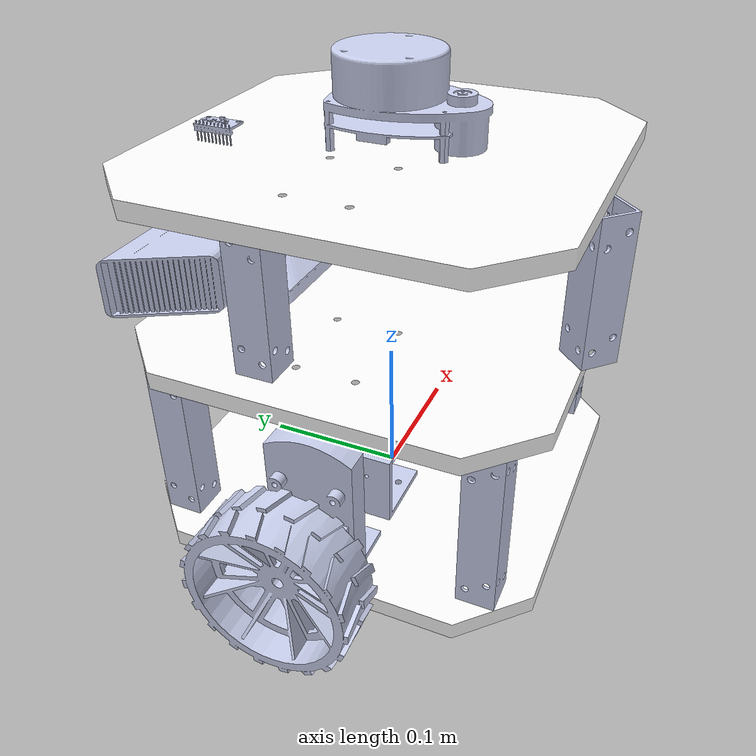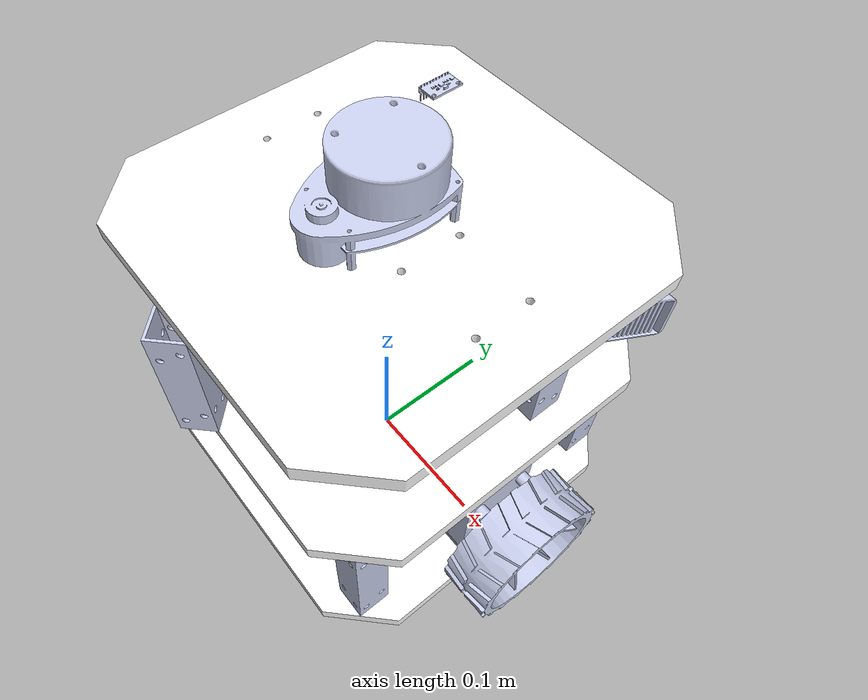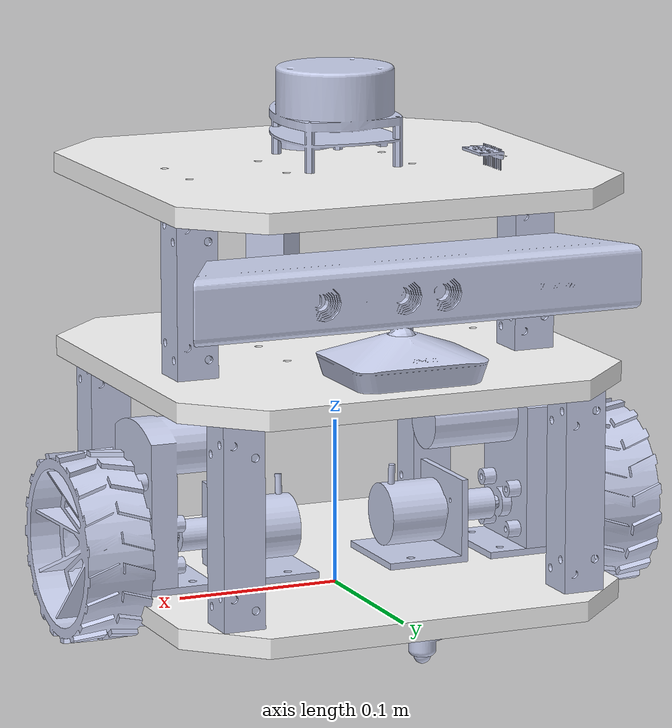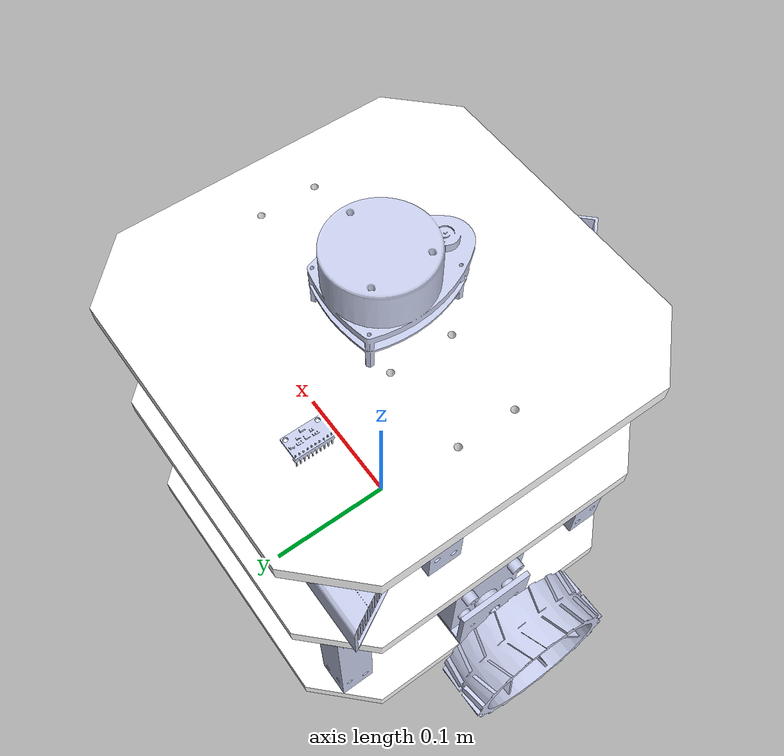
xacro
<?xml version="1.0" encoding="utf-8"?>

<robot name="turtlebot3_pro_max123"  xmlns:xacro="http://www.ros.org/wiki/xacro">

  <xacro:property name="Kinect_Camera" value="0.05" /> <!-- Size of square 'camera' box -->
  <xacro:property name="RP_LiDAR_A1" value="0.05" /> <!-- Size of square 'LiDAR' box -->

  <xacro:property name="M_PI" value="3.14159265359" />
  <xacro:property name="M_PI2" value="1.57079632679" />

  <xacro:property name="_friction" value="0.1" />
  <xacro:property name="_damping" value="0.001" />
  <xacro:property name="_velocity" value="0.5" />
  <xacro:property name="_effort" value="1000.0" />
  <xacro:property name="_lower_limit" value="-6.0" />
  <xacro:property name="_higher_limit" value="6.0" />

  <xacro:include filename="$(find turtlebot3_pro_max123)/urdf/turtlebot3_pro_max123.gazebo" />
  <xacro:include filename="$(find turtlebot3_pro_max123)/urdf/materials.xacro" />
  <xacro:include filename="$(find turtlebot3_pro_max123)/urdf/macros.xacro" />

  <link
    name="Ground Floor">
    <inertial>
      <origin
        xyz="4.70304717569314E-19 -1.51383696413054E-18 0.006"
        rpy="0 0 0" />
      <mass
        value="0.306175115098668" />
      <inertia
        ixx="0.00188258342887214"
        ixy="-1.06344407501349E-19"
        ixz="-9.60175745415004E-23"
        iyy="0.0018791495675708"
        iyz="1.14475544064493E-19"
        izz="0.00375438479368057" />
    </inertial>
    <visual>
      <origin
        xyz="0 0 0"
        rpy="0 0 0" />
      <geometry>
        <mesh
          filename="package://turtlebot3_pro_max123/meshes/Ground Floor.STL" />
      </geometry>
      <material
        name="">
        <color
          rgba="1 1 1 1" />
      </material>
    </visual>
    <collision>
      <origin
        xyz="0 0 0"
        rpy="0 0 0" />
      <geometry>
        <mesh
          filename="package://turtlebot3_pro_max123/meshes/Ground Floor_collision.STL" />
      </geometry>
    </collision>
  </link>
  <link
    name="Ground_Floor_Vertical_Links">
    <inertial>
      <origin
        xyz="-0.1073 -8.32667268468867E-17 -0.1073"
        rpy="0 0 0" />
      <mass
        value="0.0873427258771282" />
      <inertia
        ixx="0.000110813104969509"
        ixy="1.68389366232844E-08"
        ixz="1.07557713438902E-21"
        iyy="1.60586974010864E-05"
        iyz="-1.68389366232222E-08"
        izz="0.000110813104969509" />
    </inertial>
    <visual>
      <origin
        xyz="0 0 0"
        rpy="0 0 0" />
      <geometry>
        <mesh
          filename="package://turtlebot3_pro_max123/meshes/Ground_Floor_Vertical_Links.STL" />
      </geometry>
      <material
        name="">
        <color
          rgba="0.792156862745098 0.819607843137255 0.933333333333333 1" />
      </material>
    </visual>
    <collision>
      <origin
        xyz="0 0 0"
        rpy="0 0 0" />
      <geometry>
        <mesh
          filename="package://turtlebot3_pro_max123/meshes/Ground_Floor_Vertical_Links_collision.STL" />
      </geometry>
    </collision>
  </link>
  <joint
    name="Ground_Floor_Vertical_Links_Joint"
    type="fixed">
    <origin
      xyz="0.1073 0.1073 0.0720000000000001"
      rpy="1.5707963267949 0 1.5707963267949" />
    <parent
      link="Ground Floor" />
    <child
      link="Ground_Floor_Vertical_Links" />
    <axis
      xyz="0 0 0" />
  </joint>
  <link
    name="First_Floor">
    <inertial>
      <origin
        xyz="-7.86566268856647E-18 0.00600000000000023 3.94665955637125E-17"
        rpy="0 0 0" />
      <mass
        value="0.306175115098668" />
      <inertia
        ixx="0.00188258342887214"
        ixy="5.77401645268386E-24"
        ixz="-9.25547897022068E-20"
        iyy="0.00375438479368056"
        iyz="7.06684763120197E-19"
        izz="0.0018791495675708" />
    </inertial>
    <visual>
      <origin
        xyz="0 0 0"
        rpy="0 0 0" />
      <geometry>
        <mesh
          filename="package://turtlebot3_pro_max123/meshes/First_Floor.STL" />
      </geometry>
      <material
        name="">
        <color
          rgba="1 1 1 1" />
      </material>
    </visual>
    <collision>
      <origin
        xyz="0 0 0"
        rpy="0 0 0" />
      <geometry>
        <mesh
          filename="package://turtlebot3_pro_max123/meshes/First_Floor_collision.STL" />
      </geometry>
    </collision>
  </link>
  <joint
    name="First_Floor_Joint"
    type="fixed">
    <origin
      xyz="-0.1073 0.06 -0.1073"
      rpy="0 -1.5708 0" />
    <parent
      link="Ground_Floor_Vertical_Links" />
    <child
      link="First_Floor" />
    <axis
      xyz="0 0 0" />
  </joint>
  <link
    name="First_Floor_Vertical_Links">
    <inertial>
      <origin
        xyz="0.0974764231260202 -3.60822483003176E-16 0.0974766645992801"
        rpy="0 0 0" />
      <mass
        value="0.054275044407846" />
      <inertia
        ixx="4.94997932361172E-05"
        ixy="8.41946831165636E-09"
        ixz="0"
        iyy="9.9789824108148E-06"
        iyz="8.41946831165525E-09"
        izz="4.94997932361172E-05" />
    </inertial>
    <visual>
      <origin
        xyz="0 0 0"
        rpy="0 0 0" />
      <geometry>
        <mesh
          filename="package://turtlebot3_pro_max123/meshes/First_Floor_Vertical_Links.STL" />
      </geometry>
      <material
        name="">
        <color
          rgba="0.792156862745098 0.819607843137255 0.933333333333333 1" />
      </material>
    </visual>
    <collision>
      <origin
        xyz="0 0 0"
        rpy="0 0 0" />
      <geometry>
        <mesh
          filename="package://turtlebot3_pro_max123/meshes/First_Floor_Vertical_Links_collision.STL" />
      </geometry>
    </collision>
  </link>
  <joint
    name="First_Floor_Vertical_Links_Joint"
    type="fixed">
    <origin
      xyz="0 0.0619999999999999 -0.122039487757862"
      rpy="0 -0.785398163397447 -3.14159265358979" />
    <parent
      link="First_Floor" />
    <child
      link="First_Floor_Vertical_Links" />
    <axis
      xyz="0 0 0" />
  </joint>
  <link
    name="Second_Floor">
    <inertial>
      <origin
        xyz="-4.59978908314626E-17 0.00600000000000059 2.12960309672514E-18"
        rpy="0 0 0" />
      <mass
        value="0.306175115098668" />
      <inertia
        ixx="0.00188258342887214"
        ixy="1.06184538248409E-18"
        ixz="-1.15660529150226E-20"
        iyy="0.00375438479368057"
        iyz="2.28899169636148E-19"
        izz="0.0018791495675708" />
    </inertial>
    <visual>
      <origin
        xyz="0 0 0"
        rpy="0 0 0" />
      <geometry>
        <mesh
          filename="package://turtlebot3_pro_max123/meshes/Second_Floor.STL" />
      </geometry>
      <material
        name="">
        <color
          rgba="1 1 1 1" />
      </material>
    </visual>
    <collision>
      <origin
        xyz="0 0 0"
        rpy="0 0 0" />
      <geometry>
        <mesh
          filename="package://turtlebot3_pro_max123/meshes/Second_Floor_collision.STL" />
      </geometry>
    </collision>
  </link>
  <joint
    name="Second_Floor_Joint"
    type="fixed">
    <origin
      xyz="0.0862949493661165 -0.05 0.0862949493661169"
      rpy="3.14159265358979 0.785398163397447 0" />
    <parent
      link="First_Floor_Vertical_Links" />
    <child
      link="Second_Floor" />
    <axis
      xyz="0 0 0" />
  </joint>
  <link
    name="MPU9250">
    <inertial>
      <origin
        xyz="-0.118217830949175 -0.00104259470994378 -0.162868160967249"
        rpy="0 0 0" />
      <mass
        value="0.000628851677164537" />
      <inertia
        ixx="2.84177895500367E-08"
        ixy="-3.75278292675917E-14"
        ixz="4.57750732123504E-14"
        iyy="3.75953504496454E-08"
        iyz="-4.2587819218147E-14"
        izz="1.06612939030681E-08" />
    </inertial>
    <visual>
      <origin
        xyz="0 0 0"
        rpy="0 0 0" />
      <geometry>
        <mesh
          filename="package://turtlebot3_pro_max123/meshes/MPU9250.STL" />
      </geometry>
      <material
        name="">
        <color
          rgba="0.792156862745098 0.819607843137255 0.933333333333333 1" />
      </material>
    </visual>
    <collision>
      <origin
        xyz="0 0 0"
        rpy="0 0 0" />
      <geometry>
        <mesh
          filename="package://turtlebot3_pro_max123/meshes/MPU9250_collision.STL" />
      </geometry>
    </collision>
  </link>
  <joint
    name="MPU9250_joint"
    type="fixed">
    <origin
      xyz="-0.0625950000000004 0.0295700000000001 -0.0751399999999997"
      rpy="3.14159265358979 0 3.14159265358979" />
    <parent
      link="Second_Floor" />
    <child
      link="MPU9250" />
    <axis
      xyz="0 0 0" />
  </joint>
  <link
    name="RP_LiDAR_A1">
    <inertial>
      <origin
        xyz="-0.0210078094365039 0.0106966269502565 -9.1634219840406E-05"
        rpy="0 0 0" />
      <mass
        value="1.3324811049663" />
      <inertia
        ixx="0.000615842284246016"
        ixy="-0.000158500451241491"
        ixz="7.98987037271028E-07"
        iyy="0.0010983934471466"
        iyz="-3.10024618929427E-06"
        izz="0.000961697044037426" />
    </inertial>
    <visual>
      <origin
        xyz="0 0 0"
        rpy="0 0 0" />
      <geometry>
        <mesh
          filename="package://turtlebot3_pro_max123/meshes/RP_LiDAR_A1.STL" />
      </geometry>
      <material
        name="">
        <color
          rgba="0.792156862745098 0.819607843137255 0.933333333333333 1" />
      </material>
    </visual>
    <collision>
      <origin
        xyz="0 0 0"
        rpy="0 0 0" />
      <geometry>
        <mesh
          filename="package://turtlebot3_pro_max123/meshes/RP_LiDAR_A1_collision.STL" />
      </geometry>
    </collision>
  </link>
  <joint
    name="RP_LiDAR_A1_Joint"
    type="fixed">
    <origin
      xyz="0 0.0366 0.0142499999999999"
      rpy="0 -1.5707963267949 0" />
    <parent
      link="Second_Floor" />
    <child
      link="RP_LiDAR_A1" />
    <axis
      xyz="0 0 0" />
  </joint>
  <link
    name="Kinect_Base">
    <inertial>
      <origin
        xyz="-0.00425918193058036 0.00943012756099207 -0.184943395044608"
        rpy="0 0 0" />
      <mass
        value="0.100919540065879" />
      <inertia
        ixx="3.77313887602913E-05"
        ixy="-6.5453153474285E-12"
        ixz="1.045286227031E-10"
        iyy="8.33159866791771E-05"
        iyz="-2.65982400359128E-10"
        izz="5.25438545962697E-05" />
    </inertial>
    <visual>
      <origin
        xyz="0 0 0"
        rpy="0 0 0" />
      <geometry>
        <mesh
          filename="package://turtlebot3_pro_max123/meshes/Kinect_Base.STL" />
      </geometry>
      <material
        name="">
        <color
          rgba="0.792156862745098 0.819607843137255 0.933333333333333 1" />
      </material>
    </visual>
    <collision>
      <origin
        xyz="0 0 0"
        rpy="0 0 0" />
      <geometry>
        <mesh
          filename="package://turtlebot3_pro_max123/meshes/Kinect_Base_collision.STL" />
      </geometry>
    </collision>
  </link>
  <joint
    name="Kinect_Base_Joint"
    type="fixed">
    <origin
      xyz="0.00212959588475317 0.0125 0.0924719063318718"
      rpy="0 0 0" />
    <parent
      link="First_Floor" />
    <child
      link="Kinect_Base" />
    <axis
      xyz="0 0 0" />
  </joint>
  <joint
    name="Kinect_Camera_Joint"
    type="fixed">
    <origin
      xyz="0.000138403787494056 0.034 -0.00247190633187176"
      rpy="0 1.57079632675 0" />
    <parent
      link="Kinect_Base" />
    <child
      link="Kinect_Camera" />
    <axis
      xyz="0 0 0" />
  </joint>
  <link
    name="Kinect_Camera">
    <inertial>
      <origin
        xyz="-0.00473113870691642 0.0188109981011434 -0.181056666701459"
        rpy="0 0 0" />
      <mass
        value="0.545535346057759" />
      <inertia
        ixx="0.000225893798697897"
        ixy="3.46017963839556E-08"
        ixz="-2.56609747502066E-06"
        iyy="0.0028794245905872"
        iyz="-1.47528550669068E-07"
        izz="0.00278997231042472" />
    </inertial>
    <visual>
      <origin
        xyz="0 0 0"
        rpy="0 -1.571 0" />
      <geometry>
        <mesh
          filename="package://turtlebot3_pro_max123/meshes/Kinect_Camera.STL" />
      </geometry>
      <material
        name="">
        <color
          rgba="0.792156862745098 0.819607843137255 0.933333333333333 1" />
      </material>
    </visual>
    <collision>
      <origin
        xyz="0 0 0"
        rpy="0 -1.571 0" />
      <geometry>
        <mesh
          filename="package://turtlebot3_pro_max123/meshes/Kinect_Camera_collision.STL" />
      </geometry>
    </collision>
  </link>

  <link
    name="Front_Castor_Wheel">
    <inertial>
      <origin
        xyz="-0.254 2.88450778881281E-17 0.00452901974820012"
        rpy="0 0 0" />
      <mass
        value="0.00176851508275407" />
      <inertia
        ixx="7.19459865531897E-08"
        ixy="1.04003421744339E-22"
        ixz="4.19880617968765E-23"
        iyy="7.1945986553189E-08"
        iyz="2.56102315964772E-22"
        izz="9.78322787119691E-08" />
    </inertial>
    <visual>
      <origin
        xyz="0 0 0"
        rpy="0 0 0" />
      <geometry>
        <mesh
          filename="package://turtlebot3_pro_max123/meshes/Front_Castor_Wheel.STL" />
      </geometry>
      <material
        name="">
        <color
          rgba="0.792156862745098 0.819607843137255 0.933333333333333 1" />
      </material>
    </visual>
    <collision>
      <origin
        xyz="0 0 0"
        rpy="0 0 0" />
      <geometry>
        <mesh
          filename="package://turtlebot3_pro_max123/meshes/Front_Castor_Wheel_collision.STL" />
      </geometry>
    </collision>
  </link>
  <joint
    name="Front_Castor_Wheel_Joint"
    type="fixed">
    <origin
      xyz="0 -0.127 0"
      rpy="3.14159265358979 0 -1.5707963267949" />
    <parent
      link="Ground Floor" />
    <child
      link="Front_Castor_Wheel" />
    <axis
      xyz="0 0 0" />
  </joint>
  <link
    name="Front_Castor_Ball">
    <inertial>
      <origin
        xyz="0.254 0 2.01637250299425E-10"
        rpy="0 0 0" />
      <mass
        value="0.000523598775598299" />
      <inertia
        ixx="5.23598775598299E-09"
        ixy="-3.25208566183215E-57"
        ixz="9.3549344069031E-52"
        iyy="5.23598775598299E-09"
        iyz="4.44108029208484E-35"
        izz="5.23598775598299E-09" />
    </inertial>
    <visual>
      <origin
        xyz="0 0 0"
        rpy="0 0 0" />
      <geometry>
        <mesh
          filename="package://turtlebot3_pro_max123/meshes/Front_Castor_Ball.STL" />
      </geometry>
      <material
        name="">
        <color
          rgba="0.792156862745098 0.819607843137255 0.933333333333333 1" />
      </material>
    </visual>
    <collision>
      <origin
        xyz="0 0 0"
        rpy="0 0 0" />
      <geometry>
        <mesh
          filename="package://turtlebot3_pro_max123/meshes/Front_Castor_Ball_collision.STL" />
      </geometry>
    </collision>
  </link>
  <joint
    name="Front_Castor_Ball_Joint"
    type="fixed">
    <origin
      xyz="0 0 0.0119999998991814"
      rpy="0 0 3.14159265358979" />
    <parent
      link="Front_Castor_Wheel" />
    <child
      link="Front_Castor_Ball" />
    <axis
      xyz="0 0 0" />
  </joint>
  <link
    name="Back_Castor_Wheel">
    <inertial>
      <origin
        xyz="-1.99732395248982E-17 0.254 0.00452901974820007"
        rpy="0 0 0" />
      <mass
        value="0.00176851508275407" />
      <inertia
        ixx="7.19459865531896E-08"
        ixy="1.02595151896986E-22"
        ixz="-2.99121332209767E-23"
        iyy="7.19459865531889E-08"
        iyz="2.61586404997334E-22"
        izz="9.78322787119691E-08" />
    </inertial>
    <visual>
      <origin
        xyz="0 0 0"
        rpy="0 0 0" />
      <geometry>
        <mesh
          filename="package://turtlebot3_pro_max123/meshes/Back_Castor_Wheel.STL" />
      </geometry>
      <material
        name="">
        <color
          rgba="0.792156862745098 0.819607843137255 0.933333333333333 1" />
      </material>
    </visual>
    <collision>
      <origin
        xyz="0 0 0"
        rpy="0 0 0" />
      <geometry>
        <mesh
          filename="package://turtlebot3_pro_max123/meshes/Back_Castor_Wheel_collision.STL" />
      </geometry>
    </collision>
  </link>
  <joint
    name="Back_Castor_Wheel_Joint"
    type="fixed">
    <origin
      xyz="0 0.127 0"
      rpy="-3.14159265358979 0 0" />
    <parent
      link="Ground Floor" />
    <child
      link="Back_Castor_Wheel" />
    <axis
      xyz="0 0 0" />
  </joint>
  <link
    name="Back_Castor_Ball">
    <inertial>
      <origin
        xyz="-3.5808674788745E-17 -0.253999999899181 4.0327718595079E-10"
        rpy="0 0 0" />
      <mass
        value="0.000523598775598299" />
      <inertia
        ixx="5.23598775598299E-09"
        ixy="-5.16987882845663E-26"
        ixz="-2.06795153138256E-25"
        iyy="5.23598775598299E-09"
        iyz="5.16987882845642E-26"
        izz="5.23598775598299E-09" />
    </inertial>
    <visual>
      <origin
        xyz="0 0 0"
        rpy="0 0 0" />
      <geometry>
        <mesh
          filename="package://turtlebot3_pro_max123/meshes/Back_Castor_Ball.STL" />
      </geometry>
      <material
        name="">
        <color
          rgba="0.792156862745098 0.819607843137255 0.933333333333333 1" />
      </material>
    </visual>
    <collision>
      <origin
        xyz="0 0 0"
        rpy="0 0 0" />
      <geometry>
        <mesh
          filename="package://turtlebot3_pro_max123/meshes/Back_Castor_Ball_collision.STL" />
      </geometry>
    </collision>
  </link>
  <joint
    name="Back_Castor_Ball_Joint"
    type="fixed">
    <origin
      xyz="0 0 0.0120000001008186"
      rpy="-3.14159265358978 0 0" />
    <parent
      link="Back_Castor_Wheel" />
    <child
      link="Back_Castor_Ball" />
    <axis
      xyz="0 0 0" />
  </joint>
  <link
    name="Left_Encoder_Angle_Plate">
    <inertial>
      <origin
        xyz="4.00204699044691E-16 0.0147826849637491 -0.0134823723164557"
        rpy="0 0 0" />
      <mass
        value="0.0219254603042376" />
      <inertia
        ixx="1.11096889660457E-05"
        ixy="-3.62497572674904E-21"
        ixz="1.9290648439196E-20"
        iyy="1.2452291796096E-05"
        iyz="-3.21812145037989E-06"
        izz="1.24772407573447E-05" />
    </inertial>
    <visual>
      <origin
        xyz="0 0 0"
        rpy="0 0 0" />
      <geometry>
        <mesh
          filename="package://turtlebot3_pro_max123/meshes/Left_Encoder_Angle_Plate.STL" />
      </geometry>
      <material
        name="">
        <color
          rgba="0.792156862745098 0.819607843137255 0.933333333333333 1" />
      </material>
    </visual>
    <collision>
      <origin
        xyz="0 0 0"
        rpy="0 0 0" />
      <geometry>
        <mesh
          filename="package://turtlebot3_pro_max123/meshes/Left_Encoder_Angle_Plate.STL" />
      </geometry>
    </collision>
  </link>
  <joint
    name="Left_Encoder_Angle_Plate_Joint"
    type="fixed">
    <origin
      xyz="0.0739999999999819 0 0.012"
      rpy="-3.14159265358979 0 -1.5707963267949" />
    <parent
      link="Ground Floor" />
    <child
      link="Left_Encoder_Angle_Plate" />
    <axis
      xyz="0 0 0" />
  </joint>
  <link
    name="Left_Encoder">
    <inertial>
      <origin
        xyz="-2.07796140537508E-10 -9.19971150234455E-05 0.0180755929019836"
        rpy="0 0 0" />
      <mass
        value="0.0410483914806997" />
      <inertia
        ixx="8.2840083563058E-06"
        ixy="-1.57526967029876E-13"
        ixz="-3.75754148520815E-14"
        iyy="8.18832869190217E-06"
        iyz="-4.56008928061674E-08"
        izz="7.30004066465015E-06" />
    </inertial>
    <visual>
      <origin
        xyz="0 0 0"
        rpy="0 0 0" />
      <geometry>
        <mesh
          filename="package://turtlebot3_pro_max123/meshes/Left_Encoder.STL" />
      </geometry>
      <material
        name="">
        <color
          rgba="0.792156862745098 0.819607843137255 0.933333333333333 1" />
      </material>
    </visual>
    <collision>
      <origin
        xyz="0 0 0"
        rpy="0 0 0" />
      <geometry>
        <mesh
          filename="package://turtlebot3_pro_max123/meshes/Left_Encoder_collision.STL" />
      </geometry>
    </collision>
  </link>
  <joint
    name="Left_Encoder_Joint"
    type="fixed">
    <origin
      xyz="0 0.044 -0.0270000000000001"
      rpy="1.5707963267949 -0.0872664625996489 0" />
    <parent
      link="Left_Encoder_Angle_Plate" />
    <child
      link="Left_Encoder" />
    <axis
      xyz="0 0 0" />
  </joint>
  <link
    name="Left_Encoder_Shaft">
    <inertial>
      <origin
        xyz="4.77048955893622E-16 4.16333634234434E-17 0.00999999999999997"
        rpy="0 0 0" />
      <mass
        value="0.000565486677646163" />
      <inertia
        ixx="2.01219009462426E-08"
        ixy="-2.06795153138257E-25"
        ixz="-9.60777382812035E-23"
        iyy="2.01219009462426E-08"
        iyz="3.74750982407412E-24"
        izz="2.54469004940773E-09" />
    </inertial>
    <visual>
      <origin
        xyz="0 0 0"
        rpy="0 0 0" />
      <geometry>
        <mesh
          filename="package://turtlebot3_pro_max123/meshes/Left_Encoder_Shaft.STL" />
      </geometry>
      <material
        name="">
        <color
          rgba="0.792156862745098 0.819607843137255 0.933333333333333 1" />
      </material>
    </visual>
    <collision>
      <origin
        xyz="0 0 0"
        rpy="0 0 0" />
      <geometry>
        <mesh
          filename="package://turtlebot3_pro_max123/meshes/Left_Encoder_Shaft_collision.STL" />
      </geometry>
    </collision>
  </link>
  <joint
    name="Left_Encoder_Shaft_Joint"
    type="fixed">
    <origin
      xyz="0 0 0.033"
      rpy="0 0 -0.034866" />
    <parent
      link="Left_Encoder" />
    <child
      link="Left_Encoder_Shaft" />
    <axis
      xyz="0 0 1" />
    <limit
      lower="0"
      upper="0"
      effort="4.9"
      velocity="10.472" />
  </joint>
  <link
    name="Left_Encoder_Coupler">
    <inertial>
      <origin
        xyz="7.63278329429795E-17 0 0.0122557411273487"
        rpy="0 0 0" />
      <mass
        value="0.00601929152427804" />
      <inertia
        ixx="4.32085946695518E-07"
        ixy="0"
        ixz="3.33799863767204E-22"
        iyy="4.32085946695518E-07"
        iyz="2.35146849594771E-22"
        izz="3.01768038535058E-07" />
    </inertial>
    <visual>
      <origin
        xyz="0 0 0"
        rpy="0 0 0" />
      <geometry>
        <mesh
          filename="package://turtlebot3_pro_max123/meshes/Left_Encoder_Coupler.STL" />
      </geometry>
      <material
        name="">
        <color
          rgba="0.792156862745098 0.819607843137255 0.933333333333333 1" />
      </material>
    </visual>
    <collision>
      <origin
        xyz="0 0 0"
        rpy="0 0 0" />
      <geometry>
        <mesh
          filename="package://turtlebot3_pro_max123/meshes/Left_Encoder_Coupler_collision.STL" />
      </geometry>
    </collision>
  </link>
  <joint
    name="Left_Encoder_Coupler_Joint"
    type="fixed">
    <origin
      xyz="0 0 0.039"
      rpy="-3.1416 0 0.38751" />
    <parent
      link="Left_Encoder_Shaft" />
    <child
      link="Left_Encoder_Coupler" />
    <axis
      xyz="0 0 1" />
    <limit
      effort="4.9"
      velocity="10.472" />
  </joint>
  <link
    name="Left_Motor_Shaft">
    <inertial>
      <origin
        xyz="0.0329232788564365 -5.76441713439138E-05 -2.82409647163195E-16"
        rpy="0 0 0" />
      <mass
        value="0.00321285894925607" />
      <inertia
        ixx="2.54143918564532E-08"
        ixy="-4.70845713561819E-09"
        ixz="-7.37534175746627E-22"
        iyy="1.12774288289305E-06"
        iyz="-6.03695651454272E-24"
        izz="1.12717659926779E-06" />
    </inertial>
    <visual>
      <origin
        xyz="0 0 0"
        rpy="0 0 0" />
      <geometry>
        <mesh
          filename="package://turtlebot3_pro_max123/meshes/Left_Motor_Shaft.STL" />
      </geometry>
      <material
        name="">
        <color
          rgba="0.792156862745098 0.819607843137255 0.933333333333333 1" />
      </material>
    </visual>
    <collision>
      <origin
        xyz="0 0 0"
        rpy="0 0 0" />
      <geometry>
        <mesh
          filename="package://turtlebot3_pro_max123/meshes/Left_Motor_Shaft_collision.STL" />
      </geometry>
    </collision>
  </link>
  <joint
    name="Left_Motor_Shaft_Joint"
    type="fixed">
    <origin
      xyz="0 0 -0.055"
      rpy="2.7017 -1.5708 0" />
    <parent
      link="Left_Encoder_Coupler" />
    <child
      link="Left_Motor_Shaft" />
    <axis
      xyz="1 0 0" />
    <limit
      effort="4.9"
      velocity="10.472" />
  </joint>
  <link
    name="Left_Wheel">
    <inertial>
      <origin
        xyz="3.36536354339501E-15 0.00070994558924628 -3.30291349825984E-15"
        rpy="0 0 0" />
      <mass
        value="0.11502952485387" />
      <inertia
        ixx="0.000119851353018076"
        ixy="-1.15256456899608E-18"
        ixz="-1.03380032399208E-15"
        iyy="0.000215063064031578"
        iyz="-1.31378331092281E-18"
        izz="0.000119851353015825" />
    </inertial>
    <visual>
      <origin
        xyz="0 0 0"
        rpy="0 0 0" />
      <geometry>
        <mesh
          filename="package://turtlebot3_pro_max123/meshes/Left_Wheel.STL" />
      </geometry>
      <material
        name="">
        <color
          rgba="0.796078431372549 0.823529411764706 0.937254901960784 1" />
      </material>
    </visual>
    <collision>
      <origin
        xyz="0 0 0"
        rpy="0 0 0" />
      <geometry>
        <mesh
          filename="package://turtlebot3_pro_max123/meshes/Left_Wheel_collision.STL" />
      </geometry>
    </collision>
  </link>
  <joint
    name="Left_Wheel_Joint"
    type="continuous">
    <origin
      xyz="0 0 0"
      rpy="0 -0.43293 -1.5708" />
    <parent
      link="Left_Motor_Shaft" />
    <child
      link="Left_Wheel" />
    <axis
      xyz="0 1 0" />
    <limit
      effort="4.9"
      velocity="10.472" />
  </joint>
  <link
    name="Left_Motor_Plate">
    <inertial>
      <origin
        xyz="0.0142230422275223 0.0140305783109308 -5.33867520842575E-16"
        rpy="0 0 0" />
      <mass
        value="0.0228522301370466" />
      <inertia
        ixx="1.26656359081654E-05"
        ixy="3.36042653670861E-06"
        ixz="1.47286160264012E-21"
        iyy="1.25927964265988E-05"
        iyz="1.03529500452339E-20"
        izz="1.14147397394386E-05" />
    </inertial>
    <visual>
      <origin
        xyz="0 0 0"
        rpy="0 0 0" />
      <geometry>
        <mesh
          filename="package://turtlebot3_pro_max123/meshes/Left_Motor_Plate.STL" />
      </geometry>
      <material
        name="">
        <color
          rgba="0.792156862745098 0.819607843137255 0.933333333333333 1" />
      </material>
    </visual>
    <collision>
      <origin
        xyz="0 0 0"
        rpy="0 0 0" />
      <geometry>
        <mesh
          filename="package://turtlebot3_pro_max123/meshes/Left_Motor_Plate_collision.STL" />
      </geometry>
    </collision>
  </link>
  <joint
    name="Left_Motor_Plate_Joint"
    type="fixed">
    <origin
      xyz="0.14 0 0.012"
      rpy="1.5707963267949 0 -3.14159265358979" />
    <parent
      link="Ground Floor" />
    <child
      link="Left_Motor_Plate" />
    <axis
      xyz="0 0 0" />
  </joint>
  <link
    name="Left_Motor">
    <inertial>
      <origin
        xyz="-2.08906514400806E-10 0.0342490788500103 -0.0206801558865177"
        rpy="0 0 0" />
      <mass
        value="0.148158669748596" />
      <inertia
        ixx="0.000166100474730073"
        ixy="-1.94433964867423E-11"
        ixz="2.59596120614609E-13"
        iyy="8.88051318091148E-05"
        iyz="3.88331046293828E-05"
        izz="0.000139077222017456" />
    </inertial>
    <visual>
      <origin
        xyz="0 0 0"
        rpy="0 0 0" />
      <geometry>
        <mesh
          filename="package://turtlebot3_pro_max123/meshes/Left_Motor.STL" />
      </geometry>
      <material
        name="">
        <color
          rgba="0.792156862745098 0.819607843137255 0.933333333333333 1" />
      </material>
    </visual>
    <collision>
      <origin
        xyz="0 0 0"
        rpy="0 0 0" />
      <geometry>
        <mesh
          filename="package://turtlebot3_pro_max123/meshes/Left_Motor.STL" />
      </geometry>
    </collision>
  </link>
  <joint
    name="Left_Motor_Joint"
    type="fixed">
    <origin
      xyz="0.0109999999999999 0.0270000000000001 0"
      rpy="0 -1.5707963267949 0" />
    <parent
      link="Left_Motor_Plate" />
    <child
      link="Left_Motor" />
    <axis
      xyz="0 0 0" />
  </joint>
  <link
    name="Left_Motor_Shaft_1">
    <inertial>
      <origin
        xyz="0.0374232788564366 -5.76441713438167E-05 -2.65173308852266E-16"
        rpy="0 0 0" />
      <mass
        value="0.00321285894925607" />
      <inertia
        ixx="2.54143918564532E-08"
        ixy="-4.70845713561819E-09"
        ixz="-7.37534175746627E-22"
        iyy="1.12774288289305E-06"
        iyz="-6.03695651454272E-24"
        izz="1.12717659926779E-06" />
    </inertial>
    <visual>
      <origin
        xyz="0 0 0"
        rpy="0 0 0" />
      <geometry>
        <mesh
          filename="package://turtlebot3_pro_max123/meshes/Left_Motor_Shaft_1.STL" />
      </geometry>
      <material
        name="">
        <color
          rgba="0.792156862745098 0.819607843137255 0.933333333333333 1" />
      </material>
    </visual>
    <collision>
      <origin
        xyz="0 0 0"
        rpy="0 0 0" />
      <geometry>
        <mesh
          filename="package://turtlebot3_pro_max123/meshes/Left_Motor_Shaft_1_collision.STL" />
      </geometry>
    </collision>
  </link>
  <joint
    name="Left_Motor_Shaft_1_Joint"
    type="fixed">
    <origin
      xyz="0 0 0.0324999999999999"
      rpy="0 1.5707963267949 0" />
    <parent
      link="Left_Motor" />
    <child
      link="Left_Motor_Shaft_1" />
    <axis
      xyz="-1 0 0" />
    <limit
      lower="0"
      upper="0"
      effort="4.9"
      velocity="10.472" />
  </joint>
  <link
    name="Right_Encoder_Angle_Plate">
    <inertial>
      <origin
        xyz="1.27979760641119E-17 0.0147826849637491 -0.0134823723164558"
        rpy="0 0 0" />
      <mass
        value="0.0219254603042377" />
      <inertia
        ixx="1.11096889660458E-05"
        ixy="-4.16300094428234E-22"
        ixz="-5.96614307713464E-21"
        iyy="1.2452291796096E-05"
        iyz="-3.2181214503799E-06"
        izz="1.24772407573447E-05" />
    </inertial>
    <visual>
      <origin
        xyz="0 0 0"
        rpy="0 0 0" />
      <geometry>
        <mesh
          filename="package://turtlebot3_pro_max123/meshes/Right_Encoder_Angle_Plate.STL" />
      </geometry>
      <material
        name="">
        <color
          rgba="0.792156862745098 0.819607843137255 0.933333333333333 1" />
      </material>
    </visual>
    <collision>
      <origin
        xyz="0 0 0"
        rpy="0 0 0" />
      <geometry>
        <mesh
          filename="package://turtlebot3_pro_max123/meshes/Right_Encoder_Angle_Plate.STL" />
      </geometry>
    </collision>
  </link>
  <joint
    name="Right_Encoder_Angle_Plate_Joint"
    type="fixed">
    <origin
      xyz="-0.0739999999999999 0 0.012"
      rpy="-3.14159265358979 0 1.5707963267949" />
    <parent
      link="Ground Floor" />
    <child
      link="Right_Encoder_Angle_Plate" />
    <axis
      xyz="0 0 0" />
  </joint>
  <link
    name="Right_Encoder">
    <inertial>
      <origin
        xyz="-2.07795215062534E-10 -9.19971150235843E-05 0.0180755929019836"
        rpy="0 0 0" />
      <mass
        value="0.0410483914806997" />
      <inertia
        ixx="8.28400835630581E-06"
        ixy="-1.57526966659299E-13"
        ixz="-3.75754073472705E-14"
        iyy="8.18832869190217E-06"
        iyz="-4.56008928061678E-08"
        izz="7.30004066465015E-06" />
    </inertial>
    <visual>
      <origin
        xyz="0 0 0"
        rpy="0 0 0" />
      <geometry>
        <mesh
          filename="package://turtlebot3_pro_max123/meshes/Right_Encoder.STL" />
      </geometry>
      <material
        name="">
        <color
          rgba="0.792156862745098 0.819607843137255 0.933333333333333 1" />
      </material>
    </visual>
    <collision>
      <origin
        xyz="0 0 0"
        rpy="0 0 0" />
      <geometry>
        <mesh
          filename="package://turtlebot3_pro_max123/meshes/Right_Encoder_collision.STL" />
      </geometry>
    </collision>
  </link>
  <joint
    name="Right_Encoder_Joint"
    type="fixed">
    <origin
      xyz="0 0.044 -0.027"
      rpy="1.5707963267949 -0.0872664625996818 0" />
    <parent
      link="Right_Encoder_Angle_Plate" />
    <child
      link="Right_Encoder" />
    <axis
      xyz="0 0 0" />
  </joint>
  <link
    name="Right_Encoder_Shaft">
    <inertial>
      <origin
        xyz="1.33053290607421E-15 -6.93889390390723E-17 0.01"
        rpy="0 0 0" />
      <mass
        value="0.000565486677646163" />
      <inertia
        ixx="2.01219009462426E-08"
        ixy="0"
        ixz="2.43923777110234E-23"
        iyy="2.01219009462426E-08"
        iyz="-1.72092758554424E-26"
        izz="2.54469004940773E-09" />
    </inertial>
    <visual>
      <origin
        xyz="0 0 0"
        rpy="0 0 0" />
      <geometry>
        <mesh
          filename="package://turtlebot3_pro_max123/meshes/Right_Encoder_Shaft.STL" />
      </geometry>
      <material
        name="">
        <color
          rgba="0.792156862745098 0.819607843137255 0.933333333333333 1" />
      </material>
    </visual>
    <collision>
      <origin
        xyz="0 0 0"
        rpy="0 0 0" />
      <geometry>
        <mesh
          filename="package://turtlebot3_pro_max123/meshes/Right_Encoder_Shaft_collision.STL" />
      </geometry>
    </collision>
  </link>
  <joint
    name="Right_Encoder_Shaft_Joint"
    type="fixed">
    <origin
      xyz="0 0 0.033"
      rpy="0 0 -0.034866" />
    <parent
      link="Right_Encoder" />
    <child
      link="Right_Encoder_Shaft" />
    <axis
      xyz="0 0 1" />
    <limit
      lower="0"
      upper="0"
      effort="4.9"
      velocity="10.472" />
  </joint>
  <link
    name="Right_Encoder_Coupler">
    <inertial>
      <origin
        xyz="-1.87350135405495E-16 4.31078783780237E-16 0.0122557411273485"
        rpy="0 0 0" />
      <mass
        value="0.00601929152427805" />
      <inertia
        ixx="4.32085946695519E-07"
        ixy="3.55687663397802E-23"
        ixz="-1.90783876858057E-22"
        iyy="4.32085946695519E-07"
        iyz="4.74326771450322E-22"
        izz="3.01768038535058E-07" />
    </inertial>
    <visual>
      <origin
        xyz="0 0 0"
        rpy="0 0 0" />
      <geometry>
        <mesh
          filename="package://turtlebot3_pro_max123/meshes/Right_Encoder_Coupler.STL" />
      </geometry>
      <material
        name="">
        <color
          rgba="0.792156862745098 0.819607843137255 0.933333333333333 1" />
      </material>
    </visual>
    <collision>
      <origin
        xyz="0 0 0"
        rpy="0 0 0" />
      <geometry>
        <mesh
          filename="package://turtlebot3_pro_max123/meshes/Right_Encoder_Coupler_collision.STL" />
      </geometry>
    </collision>
  </link>
  <joint
    name="Right_Encoder_Coupler_Joint"
    type="fixed">
    <origin
      xyz="0 0 0.039"
      rpy="3.1416 0 -1.594" />
    <parent
      link="Right_Encoder_Shaft" />
    <child
      link="Right_Encoder_Coupler" />
    <axis
      xyz="0 0 1" />
    <limit
      effort="4.9"
      velocity="10.472" />
  </joint>
  <link
    name="Right_Motor_Shaft">
    <inertial>
      <origin
        xyz="0.0329232788564363 -5.76441713438861E-05 4.146848295667E-17"
        rpy="0 0 0" />
      <mass
        value="0.00321285894925607" />
      <inertia
        ixx="2.54143918564532E-08"
        ixy="-4.70845713561842E-09"
        ixz="-2.24226760769052E-25"
        iyy="1.12774288289305E-06"
        iyz="-3.27313705451804E-25"
        izz="1.12717659926779E-06" />
    </inertial>
    <visual>
      <origin
        xyz="0 0 0"
        rpy="0 0 0" />
      <geometry>
        <mesh
          filename="package://turtlebot3_pro_max123/meshes/Right_Motor_Shaft.STL" />
      </geometry>
      <material
        name="">
        <color
          rgba="0.792156862745098 0.819607843137255 0.933333333333333 1" />
      </material>
    </visual>
    <collision>
      <origin
        xyz="0 0 0"
        rpy="0 0 0" />
      <geometry>
        <mesh
          filename="package://turtlebot3_pro_max123/meshes/Right_Motor_Shaft_collision.STL" />
      </geometry>
    </collision>
  </link>
  <joint
    name="Right_Motor_Shaft_Joint"
    type="fixed">
    <origin
      xyz="0 0 -0.055"
      rpy="1.6 -1.5708 0" />
    <parent
      link="Right_Encoder_Coupler" />
    <child
      link="Right_Motor_Shaft" />
    <axis
      xyz="1 0 0" />
    <limit
      effort="4.9"
      velocity="10.472" />
  </joint>
  <link
    name="Right_Wheel">
    <inertial>
      <origin
        xyz="-2.67841304690819E-15 -0.0137900544107539 -2.85882428840978E-15"
        rpy="0 0 0" />
      <mass
        value="0.11502952485387" />
      <inertia
        ixx="0.000119851353016967"
        ixy="-2.72969876016216E-18"
        ixz="-4.73013690932902E-16"
        iyy="0.000215063064031778"
        iyz="2.02352172612603E-18"
        izz="0.000119851353017134" />
    </inertial>
    <visual>
      <origin
        xyz="0 0 0"
        rpy="0 0 0" />
      <geometry>
        <mesh
          filename="package://turtlebot3_pro_max123/meshes/Right_Wheel.STL" />
      </geometry>
      <material
        name="">
        <color
          rgba="0.796078431372549 0.823529411764706 0.937254901960784 1" />
      </material>
    </visual>
    <collision>
      <origin
        xyz="0 0 0"
        rpy="0 0 0" />
      <geometry>
        <mesh
          filename="package://turtlebot3_pro_max123/meshes/Right_Wheel_collision.STL" />
      </geometry>
    </collision>
  </link>
  <joint
    name="Right_Wheel_Joint"
    type="continuous">
    <origin
      xyz="0 0 0"
      rpy="3.1416 -0.43227 1.5708" />
    <parent
      link="Right_Motor_Shaft" />
    <child
      link="Right_Wheel" />
    <axis
      xyz="0 1 0" />
    <limit
      effort="4.9"
      velocity="10.472" />
  </joint>
  <link
    name="Right_Motor_Plate">
    <inertial>
      <origin
        xyz="0.0142230422275223 0.0140305783109309 -6.95699236973731E-18"
        rpy="0 0 0" />
      <mass
        value="0.0228522301370467" />
      <inertia
        ixx="1.26656359081654E-05"
        ixy="3.36042653670862E-06"
        ixz="1.72069435167697E-21"
        iyy="1.25927964265988E-05"
        iyz="-4.86092998236105E-22"
        izz="1.14147397394386E-05" />
    </inertial>
    <visual>
      <origin
        xyz="0 0 0"
        rpy="0 0 0" />
      <geometry>
        <mesh
          filename="package://turtlebot3_pro_max123/meshes/Right_Motor_Plate.STL" />
      </geometry>
      <material
        name="">
        <color
          rgba="0.792156862745098 0.819607843137255 0.933333333333333 1" />
      </material>
    </visual>
    <collision>
      <origin
        xyz="0 0 0"
        rpy="0 0 0" />
      <geometry>
        <mesh
          filename="package://turtlebot3_pro_max123/meshes/Right_Motor_Plate_collision.STL" />
      </geometry>
    </collision>
  </link>
  <joint
    name="Right_Motor_Plate_Joint"
    type="fixed">
    <origin
      xyz="-0.14 0 0.012"
      rpy="1.5707963267949 0 0" />
    <parent
      link="Ground Floor" />
    <child
      link="Right_Motor_Plate" />
    <axis
      xyz="0 0 0" />
  </joint>
  <link
    name="Right_Motor">
    <inertial>
      <origin
        xyz="-2.08906257029913E-10 -0.0342490788500104 0.0206801558865174"
        rpy="0 0 0" />
      <mass
        value="0.148158669748596" />
      <inertia
        ixx="0.000166100474730073"
        ixy="1.94433964723233E-11"
        ixz="-2.59596085143326E-13"
        iyy="8.88051318091147E-05"
        iyz="3.88331046293827E-05"
        izz="0.000139077222017456" />
    </inertial>
    <visual>
      <origin
        xyz="0 0 0"
        rpy="0 0 0" />
      <geometry>
        <mesh
          filename="package://turtlebot3_pro_max123/meshes/Right_Motor.STL" />
      </geometry>
      <material
        name="">
        <color
          rgba="0.792156862745098 0.819607843137255 0.933333333333333 1" />
      </material>
    </visual>
    <collision>
      <origin
        xyz="0 0 0"
        rpy="0 0 0" />
      <geometry>
        <mesh
          filename="package://turtlebot3_pro_max123/meshes/Right_Motor.STL" />
      </geometry>
    </collision>
  </link>
  <joint
    name="Right_Motor_Joint"
    type="fixed">
    <origin
      xyz="0.0110000000000002 0.027 0"
      rpy="3.1415926535 -1.5707963267949 0" />
    <parent
      link="Right_Motor_Plate" />
    <child
      link="Right_Motor" />
    <axis
      xyz="0 0 0" />
  </joint>
  <link
    name="Right_Motor_Shaft_1">
    <inertial>
      <origin
        xyz="0.0329232788564363 -5.76441713438861E-05 4.146848295667E-17"
        rpy="0 0 0" />
      <mass
        value="0.00321285894925607" />
      <inertia
        ixx="2.54143918564532E-08"
        ixy="-4.70845713561842E-09"
        ixz="-2.24226760769052E-25"
        iyy="1.12774288289305E-06"
        iyz="-3.27313705451804E-25"
        izz="1.12717659926779E-06" />
    </inertial>
    <visual>
      <origin
        xyz="0 0 0"
        rpy="0 0 0" />
      <geometry>
        <mesh
          filename="package://turtlebot3_pro_max123/meshes/Right_Motor_Shaft_1.STL" />
      </geometry>
      <material
        name="">
        <color
          rgba="0.792156862745098 0.819607843137255 0.933333333333333 1" />
      </material>
    </visual>
    <collision>
      <origin
        xyz="0 0 0"
        rpy="0 0 0" />
      <geometry>
        <mesh
          filename="package://turtlebot3_pro_max123/meshes/Right_Motor_Shaft_1_collision.STL" />
      </geometry>
    </collision>
  </link>
  <joint
    name="Right_Motor_Shaft_1_Joint"
    type="fixed">
    <origin
      xyz="0 0 -0.0279999999999999"
      rpy="0 -1.5707963267949 0" />
    <parent
      link="Right_Motor" />
    <child
      link="Right_Motor_Shaft_1" />
    <axis
      xyz="1 0 0" />
    <limit
      lower="0"
      upper="0"
      effort="4.9"
      velocity="10.472" />
  </joint>

  <transmission name="tran1">
    <type>transmission_interface/SimpleTransmission</type>
    <joint name="Left_Wheel_Joint">
      <hardwareInterface>hardware_interface/EffortJointInterface</hardwareInterface>
    </joint>
    <actuator name="Left_Motor_Shaft">
      <mechanicalReduction>1</mechanicalReduction>
      <hardwareInterface>hardware_interface/EffortJointInterface</hardwareInterface>
    </actuator>
  </transmission>

  <transmission name="tran2">
    <type>transmission_interface/SimpleTransmission</type>
    <joint name="Right_Wheel_Joint">
      <hardwareInterface>hardware_interface/EffortJointInterface</hardwareInterface>
    </joint>
    <actuator name="Right_Motor_Shaft">
      <mechanicalReduction>1</mechanicalReduction>
      <hardwareInterface>hardware_interface/EffortJointInterface</hardwareInterface>
    </actuator>
  </transmission>

</robot>
